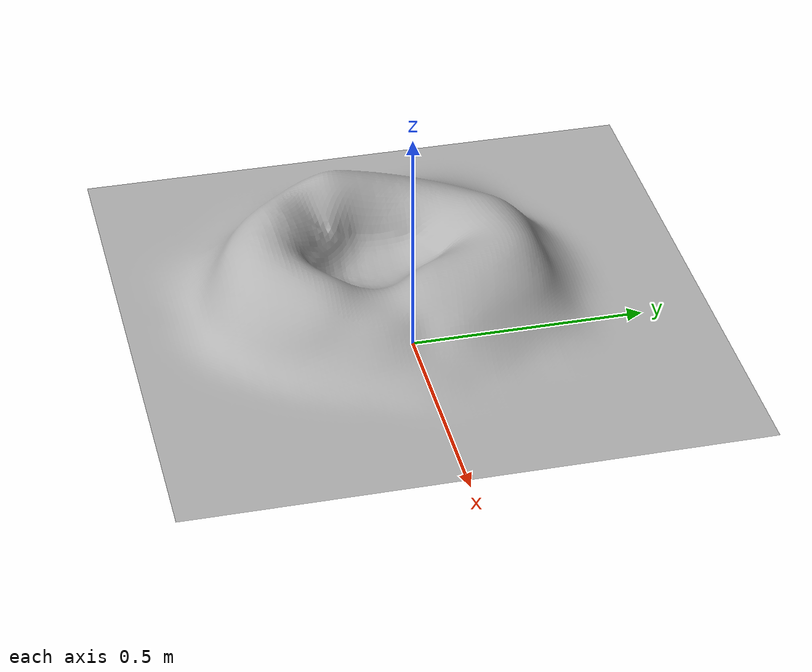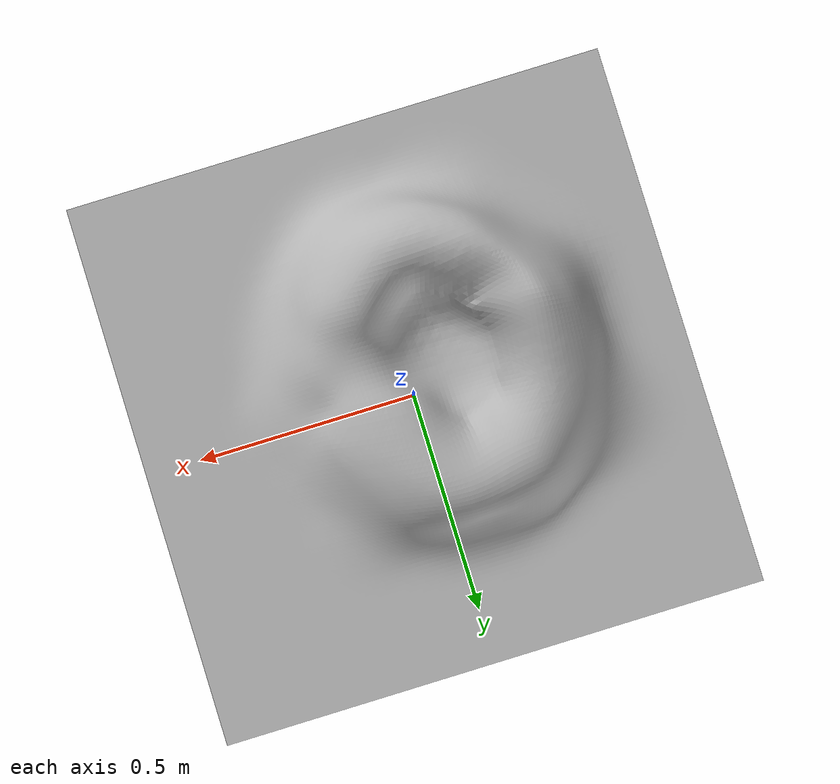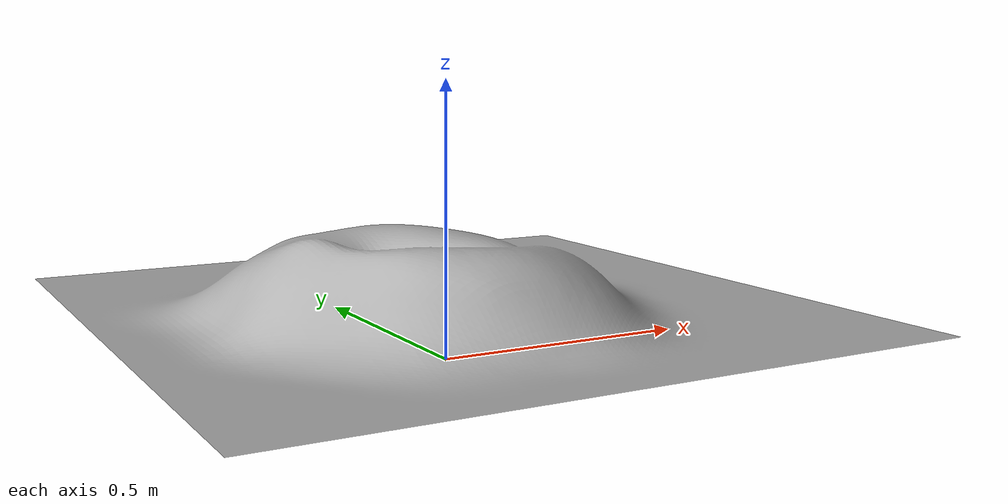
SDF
<?xml version='1.0'?>
<sdf version="1.4">
  <model name="Drill hole #1">
    <static>true</static>
    <link name="link">
      <pose>0 0 .1 0 0 0</pose>
      <collision name="collision">
        <geometry>
	  <mesh>
		  <uri>model://drill_hole_1/hole1_collider.dae</uri>
		  <scale>0.2 0.2 0.2</scale>
   	  </mesh>
        </geometry>
      </collision>
      <visual name="visual">
        <geometry>
	  <mesh>
		  <uri>model://drill_hole_1/hole1.dae</uri>
		  <scale>0.2 0.2 0.2</scale>
   	  </mesh>
        </geometry>
      </visual>
    </link>
  </model>
</sdf>
